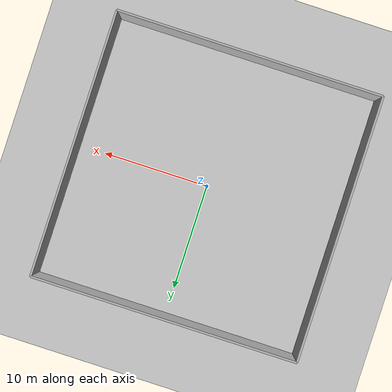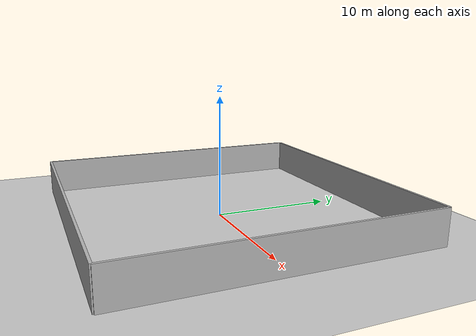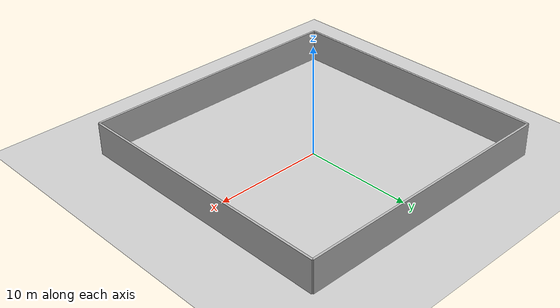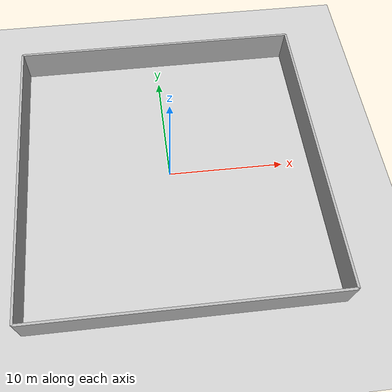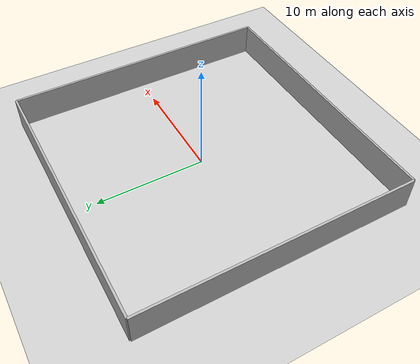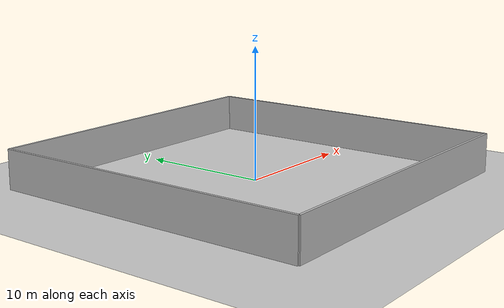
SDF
<?xml version="1.0" ?>
<sdf version="1.6">
  <world name="default">

    <include>
      <uri>model://ground_plane</uri>
    </include>

    <include>
      <uri>model://sun</uri>
    </include>

    <!-- FRONT -->
    <model name="wall_front">
      <static>true</static>
      <pose>0 12.5 1.5 0 0 0</pose>
      <link name="link">
        <collision name="collision">
          <geometry><box><size>25 0.2 3</size></box></geometry>
        </collision>
        <visual name="visual">
          <geometry><box><size>25 0.2 3</size></box></geometry>
        </visual>
      </link>
    </model>

    <!-- BACK -->
    <model name="wall_back">
      <static>true</static>
      <pose>0 -12.5 1.5 0 0 0</pose>
      <link name="link">
        <collision name="collision">
          <geometry><box><size>25 0.2 3</size></box></geometry>
        </collision>
        <visual name="visual">
          <geometry><box><size>25 0.2 3</size></box></geometry>
        </visual>
      </link>
    </model>

    <!-- LEFT -->
    <model name="wall_left">
      <static>true</static>
      <pose>-12.5 0 1.5 0 0 0</pose>
      <link name="link">
        <collision name="collision">
          <geometry><box><size>0.2 25 3</size></box></geometry>
        </collision>
        <visual name="visual">
          <geometry><box><size>0.2 25 3</size></box></geometry>
        </visual>
      </link>
    </model>

    <!-- RIGHT -->
    <model name="wall_right">
      <static>true</static>
      <pose>12.5 0 1.5 0 0 0</pose>
      <link name="link">
        <collision name="collision">
          <geometry><box><size>0.2 25 3</size></box></geometry>
        </collision>
        <visual name="visual">
          <geometry><box><size>0.2 25 3</size></box></geometry>
        </visual>
      </link>
    </model>

  </world>
</sdf>
